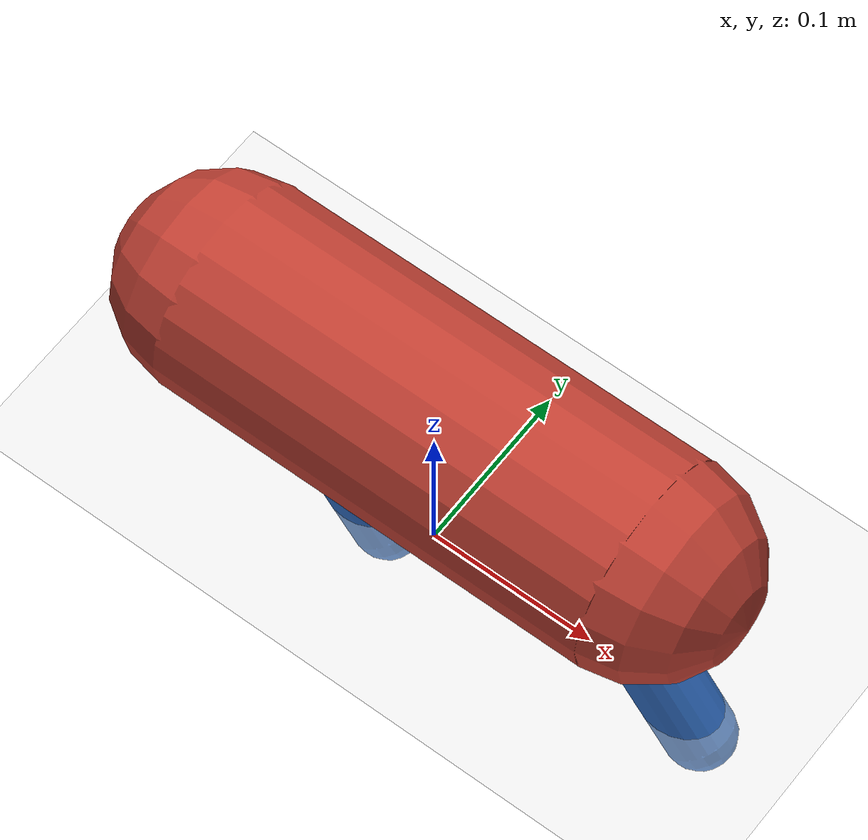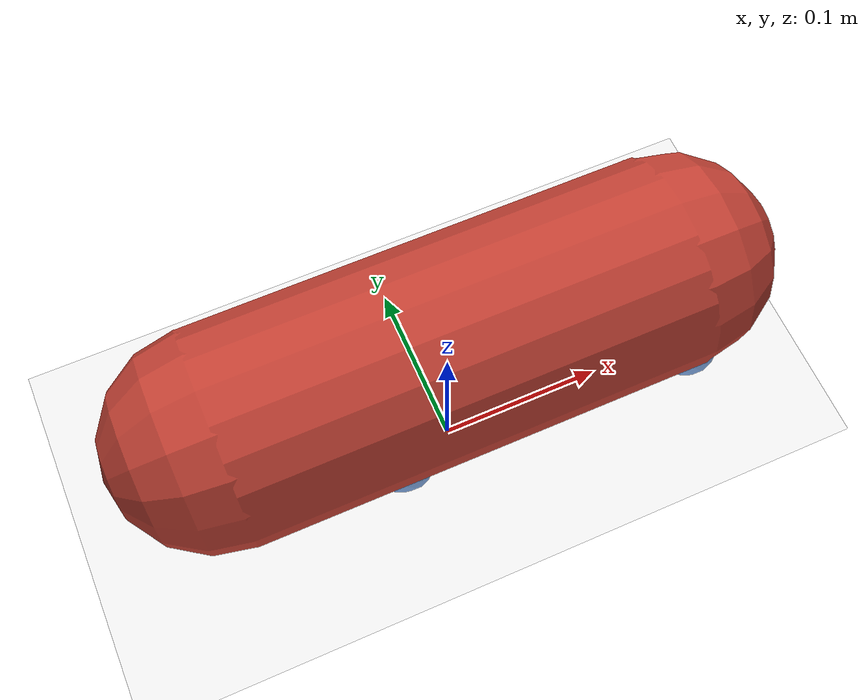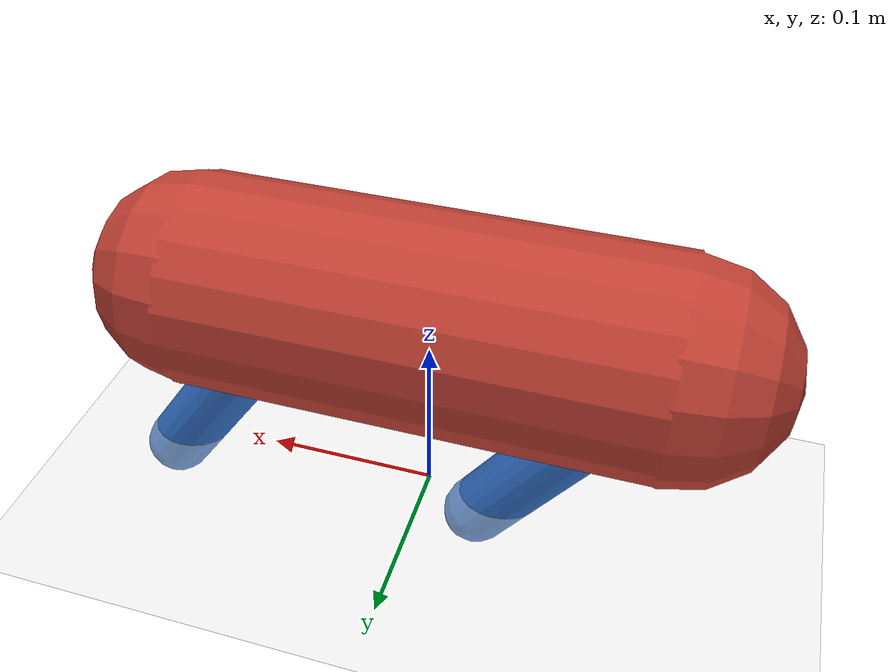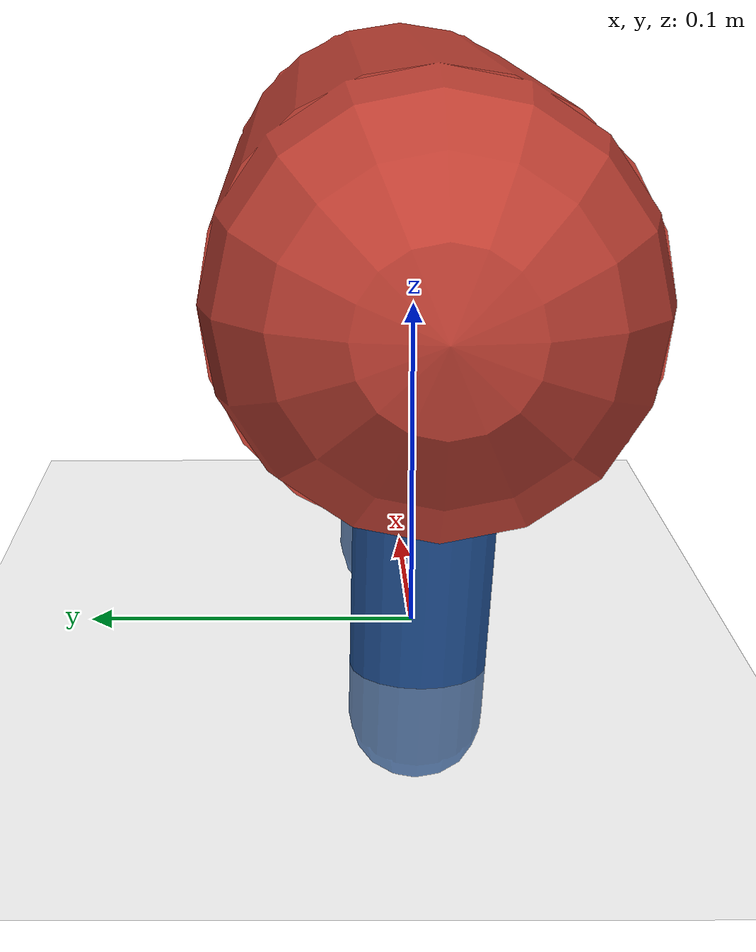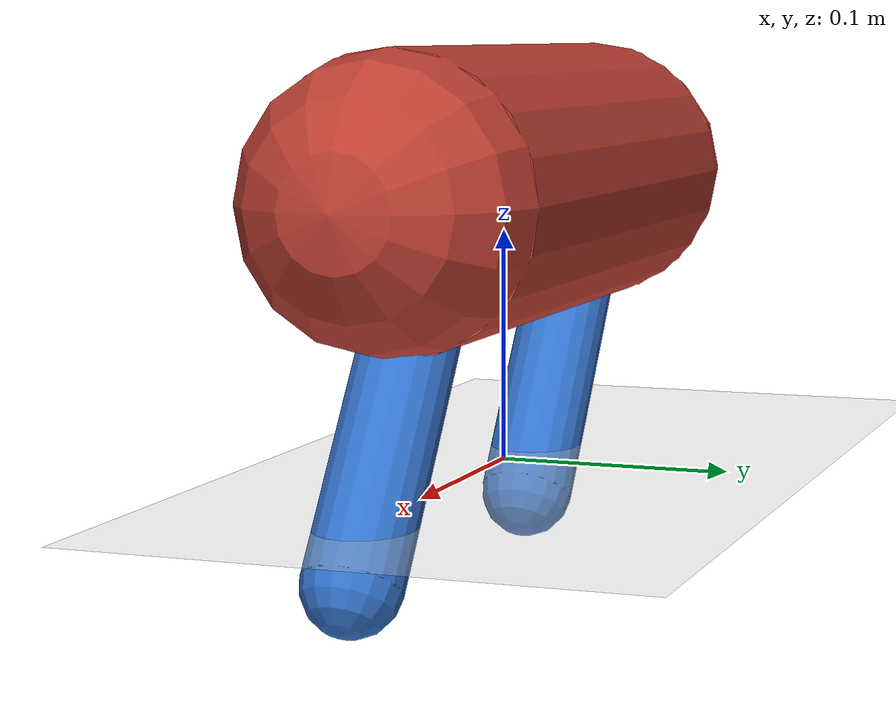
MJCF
<!-- 最小平面"虚拟小鼠"因果代理（cpu-proxy）。
  非 DeepMind virtual rodent：仅躯干 + 两条铰接腿，平面(xz)内运动，用于
  在 CPU 上验证"物理复现行为 + 干预因果"，不含 RL、不含神经活动对齐。 -->
<mujoco model="minimal_mouse_proxy">
  <option timestep="0.005" gravity="0 0 -9.81"/>
  <default>
    <joint damping="0.5"/>
    <geom condim="3" friction="1.2 0.02 0.02"/>
    <default class="leg">
      <geom size="0.02" rgba="0.2 0.45 0.8 1"/>
    </default>
  </default>

  <worldbody>
    <light pos="0 0 2"/>
    <geom name="floor" type="plane" size="5 2 0.1" rgba="0.85 0.85 0.85 1"/>

    <body name="torso" pos="0 0 0.12">
      <joint name="root" type="free"/>
      <geom name="torso_geom" type="capsule" fromto="-0.13 0 0 0.13 0 0"
            size="0.06" mass="0.6" rgba="0.75 0.25 0.2 1"/>

      <body name="leg_front" pos="0.10 0 -0.04">
        <joint name="hip_front" type="hinge" axis="0 1 0" range="-50 50"/>
        <geom class="leg" type="capsule" fromto="0 0 0 0.07 0 -0.10"
              mass="0.05"/>
      </body>
      <body name="leg_back" pos="-0.10 0 -0.04">
        <joint name="hip_back" type="hinge" axis="0 1 0" range="-50 50"/>
        <geom class="leg" type="capsule" fromto="0 0 0 0.07 0 -0.10"
              mass="0.05"/>
      </body>
    </body>
  </worldbody>

  <actuator>
    <position name="act_front" joint="hip_front" kp="8" ctrlrange="-0.8 0.8"/>
    <position name="act_back"  joint="hip_back"  kp="8" ctrlrange="-0.8 0.8"/>
  </actuator>
</mujoco>
